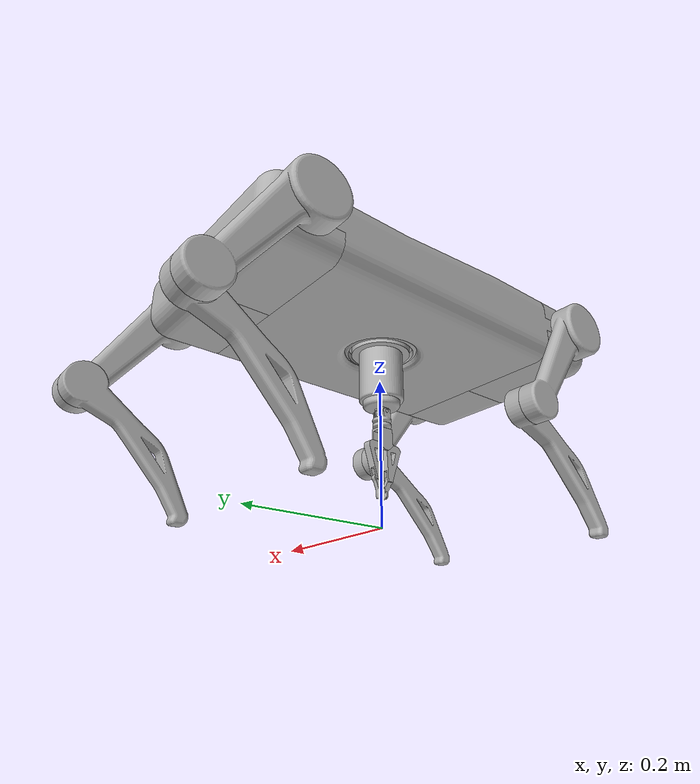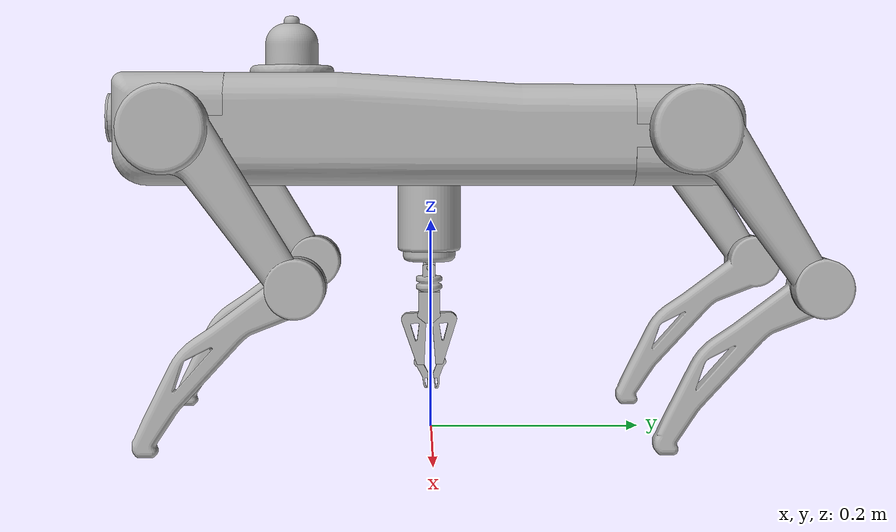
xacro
<?xml version="1.0" ?>
<robot name="Monitring" xmlns:xacro="http://www.ros.org/wiki/xacro">

<xacro:include filename="$(find Monitring_description)/urdf/materials.xacro" />
<xacro:include filename="$(find Monitring_description)/urdf/Monitring.trans" />
<xacro:include filename="$(find Monitring_description)/urdf/Monitring.gazebo" />
<link name="base_link">
  <inertial>
    <origin xyz="-0.00020325102332582743 -0.006614361054954055 0.286115067434537" rpy="0 0 0"/>
    <mass value="80.71088314860289"/>
    <inertia ixx="0.99771" iyy="0.6475" izz="1.528021" ixy="0.000886" iyz="0.021555" ixz="-2.2e-05"/>
  </inertial>
  <visual>
    <origin xyz="0 0 0" rpy="0 0 0"/>
    <geometry>
      <mesh filename="package://Monitring_description/meshes/base_link.stl" scale="0.001 0.001 0.001"/>
    </geometry>
    <material name="silver"/>
  </visual>
  <collision>
    <origin xyz="0 0 0" rpy="0 0 0"/>
    <geometry>
      <mesh filename="package://Monitring_description/meshes/base_link.stl" scale="0.001 0.001 0.001"/>
    </geometry>
  </collision>
</link>

<link name="front_left_leg_motor_1">
  <inertial>
    <origin xyz="-0.01355306353058533 2.6958860482872993e-07 2.5568792041963384e-07" rpy="0 0 0"/>
    <mass value="0.10249936906188849"/>
    <inertia ixx="8e-06" iyy="1.1e-05" izz="1.1e-05" ixy="-0.0" iyz="-0.0" ixz="-0.0"/>
  </inertial>
  <visual>
    <origin xyz="-0.172917 0.119216 -0.14933" rpy="0 0 0"/>
    <geometry>
      <mesh filename="package://Monitring_description/meshes/front_left_leg_motor_1.stl" scale="0.001 0.001 0.001"/>
    </geometry>
    <material name="silver"/>
  </visual>
  <collision>
    <origin xyz="-0.172917 0.119216 -0.14933" rpy="0 0 0"/>
    <geometry>
      <mesh filename="package://Monitring_description/meshes/front_left_leg_motor_1.stl" scale="0.001 0.001 0.001"/>
    </geometry>
  </collision>
</link>

<link name="front_left_base_leg_motor_1">
  <inertial>
    <origin xyz="0.010454059020349127 -9.613628770832605e-08 1.8815450003595302e-07" rpy="0 0 0"/>
    <mass value="0.20345739422810855"/>
    <inertia ixx="4e-05" iyy="2.8e-05" izz="2.8e-05" ixy="0.0" iyz="0.0" ixz="0.0"/>
  </inertial>
  <visual>
    <origin xyz="-0.139917 0.23194 -0.288009" rpy="0 0 0"/>
    <geometry>
      <mesh filename="package://Monitring_description/meshes/front_left_base_leg_motor_1.stl" scale="0.001 0.001 0.001"/>
    </geometry>
    <material name="silver"/>
  </visual>
  <collision>
    <origin xyz="-0.139917 0.23194 -0.288009" rpy="0 0 0"/>
    <geometry>
      <mesh filename="package://Monitring_description/meshes/front_left_base_leg_motor_1.stl" scale="0.001 0.001 0.001"/>
    </geometry>
  </collision>
</link>

<link name="back_left_base_leg_motor_1">
  <inertial>
    <origin xyz="0.010454242286346449 3.5977566265055216e-07 2.1268242222927114e-08" rpy="0 0 0"/>
    <mass value="0.2034573942281088"/>
    <inertia ixx="4e-05" iyy="2.8e-05" izz="2.8e-05" ixy="0.0" iyz="0.0" ixz="0.0"/>
  </inertial>
  <visual>
    <origin xyz="-0.139667 -0.229401 -0.287472" rpy="0 0 0"/>
    <geometry>
      <mesh filename="package://Monitring_description/meshes/back_left_base_leg_motor_1.stl" scale="0.001 0.001 0.001"/>
    </geometry>
    <material name="silver"/>
  </visual>
  <collision>
    <origin xyz="-0.139667 -0.229401 -0.287472" rpy="0 0 0"/>
    <geometry>
      <mesh filename="package://Monitring_description/meshes/back_left_base_leg_motor_1.stl" scale="0.001 0.001 0.001"/>
    </geometry>
  </collision>
</link>

<link name="back_left_leg_motor_1">
  <inertial>
    <origin xyz="-0.011111359672118515 -2.1675701084022947e-07 2.2569353907986311e-07" rpy="0 0 0"/>
    <mass value="0.08323257036604467"/>
    <inertia ixx="6e-06" iyy="7e-06" izz="7e-06" ixy="-0.0" iyz="-0.0" ixz="-0.0"/>
  </inertial>
  <visual>
    <origin xyz="-0.167667 -0.341735 -0.148476" rpy="0 0 0"/>
    <geometry>
      <mesh filename="package://Monitring_description/meshes/back_left_leg_motor_1.stl" scale="0.001 0.001 0.001"/>
    </geometry>
    <material name="silver"/>
  </visual>
  <collision>
    <origin xyz="-0.167667 -0.341735 -0.148476" rpy="0 0 0"/>
    <geometry>
      <mesh filename="package://Monitring_description/meshes/back_left_leg_motor_1.stl" scale="0.001 0.001 0.001"/>
    </geometry>
  </collision>
</link>

<link name="back_right_base_leg_motor_1">
  <inertial>
    <origin xyz="-0.010454848607162615 -1.1127678836708732e-07 -2.9755577557466495e-07" rpy="0 0 0"/>
    <mass value="0.20345739422810927"/>
    <inertia ixx="4e-05" iyy="2.8e-05" izz="2.8e-05" ixy="0.0" iyz="0.0" ixz="0.0"/>
  </inertial>
  <visual>
    <origin xyz="0.140333 -0.229069 -0.287433" rpy="0 0 0"/>
    <geometry>
      <mesh filename="package://Monitring_description/meshes/back_right_base_leg_motor_1.stl" scale="0.001 0.001 0.001"/>
    </geometry>
    <material name="silver"/>
  </visual>
  <collision>
    <origin xyz="0.140333 -0.229069 -0.287433" rpy="0 0 0"/>
    <geometry>
      <mesh filename="package://Monitring_description/meshes/back_right_base_leg_motor_1.stl" scale="0.001 0.001 0.001"/>
    </geometry>
  </collision>
</link>

<link name="back_right_leg_motor_1">
  <inertial>
    <origin xyz="0.011110862618776779 -4.2584045267801685e-07 3.1288211896352003e-07" rpy="0 0 0"/>
    <mass value="0.08323257036604494"/>
    <inertia ixx="6e-06" iyy="7e-06" izz="7e-06" ixy="-0.0" iyz="0.0" ixz="-0.0"/>
  </inertial>
  <visual>
    <origin xyz="0.168333 -0.341236 -0.148302" rpy="0 0 0"/>
    <geometry>
      <mesh filename="package://Monitring_description/meshes/back_right_leg_motor_1.stl" scale="0.001 0.001 0.001"/>
    </geometry>
    <material name="silver"/>
  </visual>
  <collision>
    <origin xyz="0.168333 -0.341236 -0.148302" rpy="0 0 0"/>
    <geometry>
      <mesh filename="package://Monitring_description/meshes/back_right_leg_motor_1.stl" scale="0.001 0.001 0.001"/>
    </geometry>
  </collision>
</link>

<link name="front_right_base_leg_motor_1">
  <inertial>
    <origin xyz="-0.010455031888808447 -9.585623078622874e-08 -3.306228518740184e-07" rpy="0 0 0"/>
    <mass value="0.20345739422810932"/>
    <inertia ixx="4e-05" iyy="2.8e-05" izz="2.8e-05" ixy="0.0" iyz="-0.0" ixz="0.0"/>
  </inertial>
  <visual>
    <origin xyz="0.140083 0.23244 -0.28801" rpy="0 0 0"/>
    <geometry>
      <mesh filename="package://Monitring_description/meshes/front_right_base_leg_motor_1.stl" scale="0.001 0.001 0.001"/>
    </geometry>
    <material name="silver"/>
  </visual>
  <collision>
    <origin xyz="0.140083 0.23244 -0.28801" rpy="0 0 0"/>
    <geometry>
      <mesh filename="package://Monitring_description/meshes/front_right_base_leg_motor_1.stl" scale="0.001 0.001 0.001"/>
    </geometry>
  </collision>
</link>

<link name="front_right_leg_motor_1">
  <inertial>
    <origin xyz="0.013552199751893257 3.276070541513576e-07 -1.322617027010864e-07" rpy="0 0 0"/>
    <mass value="0.10249936906188857"/>
    <inertia ixx="8e-06" iyy="1.1e-05" izz="1.1e-05" ixy="-0.0" iyz="-0.0" ixz="-0.0"/>
  </inertial>
  <visual>
    <origin xyz="0.173083 0.120107 -0.149014" rpy="0 0 0"/>
    <geometry>
      <mesh filename="package://Monitring_description/meshes/front_right_leg_motor_1.stl" scale="0.001 0.001 0.001"/>
    </geometry>
    <material name="silver"/>
  </visual>
  <collision>
    <origin xyz="0.173083 0.120107 -0.149014" rpy="0 0 0"/>
    <geometry>
      <mesh filename="package://Monitring_description/meshes/front_right_leg_motor_1.stl" scale="0.001 0.001 0.001"/>
    </geometry>
  </collision>
</link>

<link name="front_left_base_leg_1">
  <inertial>
    <origin xyz="-0.0042028087443805595 0.03753931839608016 -0.04369504771125657" rpy="0 0 0"/>
    <mass value="2.092722249521675"/>
    <inertia ixx="0.010959" iyy="0.00659" izz="0.004637" ixy="0.000168" iyz="0.00476" ixz="-0.000192"/>
  </inertial>
  <visual>
    <origin xyz="-0.169917 0.23194 -0.288009" rpy="0 0 0"/>
    <geometry>
      <mesh filename="package://Monitring_description/meshes/front_left_base_leg_1.stl" scale="0.001 0.001 0.001"/>
    </geometry>
    <material name="silver"/>
  </visual>
  <collision>
    <origin xyz="-0.169917 0.23194 -0.288009" rpy="0 0 0"/>
    <geometry>
      <mesh filename="package://Monitring_description/meshes/front_left_base_leg_1.stl" scale="0.001 0.001 0.001"/>
    </geometry>
  </collision>
</link>

<link name="front_left_leg_1">
  <inertial>
    <origin xyz="0.004220836142769302 -0.055275914090389164 -0.04659499214753224" rpy="0 0 0"/>
    <mass value="1.065581536123824"/>
    <inertia ixx="0.004832" iyy="0.002304" izz="0.002603" ixy="4.1e-05" iyz="-0.002257" ixz="3.5e-05"/>
  </inertial>
  <visual>
    <origin xyz="-0.137917 0.119216 -0.14933" rpy="0 0 0"/>
    <geometry>
      <mesh filename="package://Monitring_description/meshes/front_left_leg_1.stl" scale="0.001 0.001 0.001"/>
    </geometry>
    <material name="silver"/>
  </visual>
  <collision>
    <origin xyz="-0.137917 0.119216 -0.14933" rpy="0 0 0"/>
    <geometry>
      <mesh filename="package://Monitring_description/meshes/front_left_leg_1.stl" scale="0.001 0.001 0.001"/>
    </geometry>
  </collision>
</link>

<link name="back_left_base_leg_1">
  <inertial>
    <origin xyz="-0.004163104648545246 0.03810093624728547 -0.0446590675804798" rpy="0 0 0"/>
    <mass value="2.1124453566269383"/>
    <inertia ixx="0.011241" iyy="0.006793" izz="0.004718" ixy="0.000161" iyz="0.004891" ixz="-0.000184"/>
  </inertial>
  <visual>
    <origin xyz="-0.169667 -0.229401 -0.287472" rpy="0 0 0"/>
    <geometry>
      <mesh filename="package://Monitring_description/meshes/back_left_base_leg_1.stl" scale="0.001 0.001 0.001"/>
    </geometry>
    <material name="silver"/>
  </visual>
  <collision>
    <origin xyz="-0.169667 -0.229401 -0.287472" rpy="0 0 0"/>
    <geometry>
      <mesh filename="package://Monitring_description/meshes/back_left_base_leg_1.stl" scale="0.001 0.001 0.001"/>
    </geometry>
  </collision>
</link>

<link name="back_left_leg_1">
  <inertial>
    <origin xyz="0.0023131088272729805 -0.055372230830643854 -0.0464666435271061" rpy="0 0 0"/>
    <mass value="1.065785454975773"/>
    <inertia ixx="0.004832" iyy="0.002293" izz="0.002612" ixy="-1.3e-05" iyz="-0.002257" ixz="-1.2e-05"/>
  </inertial>
  <visual>
    <origin xyz="-0.137667 -0.341735 -0.148476" rpy="0 0 0"/>
    <geometry>
      <mesh filename="package://Monitring_description/meshes/back_left_leg_1.stl" scale="0.001 0.001 0.001"/>
    </geometry>
    <material name="silver"/>
  </visual>
  <collision>
    <origin xyz="-0.137667 -0.341735 -0.148476" rpy="0 0 0"/>
    <geometry>
      <mesh filename="package://Monitring_description/meshes/back_left_leg_1.stl" scale="0.001 0.001 0.001"/>
    </geometry>
  </collision>
</link>

<link name="back_right_base_leg_1">
  <inertial>
    <origin xyz="0.004897967571580536 0.03979115383289453 -0.046741590293101654" rpy="0 0 0"/>
    <mass value="2.0163974221185823"/>
    <inertia ixx="0.010807" iyy="0.006534" izz="0.004494" ixy="-0.000103" iyz="0.00471" ixz="0.000116"/>
  </inertial>
  <visual>
    <origin xyz="0.170333 -0.229069 -0.287433" rpy="0 0 0"/>
    <geometry>
      <mesh filename="package://Monitring_description/meshes/back_right_base_leg_1.stl" scale="0.001 0.001 0.001"/>
    </geometry>
    <material name="silver"/>
  </visual>
  <collision>
    <origin xyz="0.170333 -0.229069 -0.287433" rpy="0 0 0"/>
    <geometry>
      <mesh filename="package://Monitring_description/meshes/back_right_base_leg_1.stl" scale="0.001 0.001 0.001"/>
    </geometry>
  </collision>
</link>

<link name="back_right_leg_1">
  <inertial>
    <origin xyz="-0.002313568074036848 -0.05542816518882643 -0.046400173035600456" rpy="0 0 0"/>
    <mass value="1.06578555375219"/>
    <inertia ixx="0.004832" iyy="0.002288" izz="0.002618" ixy="1.3e-05" iyz="-0.002257" ixz="1.2e-05"/>
  </inertial>
  <visual>
    <origin xyz="0.138333 -0.341236 -0.148302" rpy="0 0 0"/>
    <geometry>
      <mesh filename="package://Monitring_description/meshes/back_right_leg_1.stl" scale="0.001 0.001 0.001"/>
    </geometry>
    <material name="silver"/>
  </visual>
  <collision>
    <origin xyz="0.138333 -0.341236 -0.148302" rpy="0 0 0"/>
    <geometry>
      <mesh filename="package://Monitring_description/meshes/back_right_leg_1.stl" scale="0.001 0.001 0.001"/>
    </geometry>
  </collision>
</link>

<link name="front_right_base_leg_1">
  <inertial>
    <origin xyz="0.004952969623389425 0.0391325805786599 -0.04579486394516111" rpy="0 0 0"/>
    <mass value="1.9975475266701999"/>
    <inertia ixx="0.010541" iyy="0.006356" izz="0.004404" ixy="-0.00011" iyz="0.004584" ixz="0.000126"/>
  </inertial>
  <visual>
    <origin xyz="0.170083 0.23244 -0.28801" rpy="0 0 0"/>
    <geometry>
      <mesh filename="package://Monitring_description/meshes/front_right_base_leg_1.stl" scale="0.001 0.001 0.001"/>
    </geometry>
    <material name="silver"/>
  </visual>
  <collision>
    <origin xyz="0.170083 0.23244 -0.28801" rpy="0 0 0"/>
    <geometry>
      <mesh filename="package://Monitring_description/meshes/front_right_base_leg_1.stl" scale="0.001 0.001 0.001"/>
    </geometry>
  </collision>
</link>

<link name="front_right_leg_1">
  <inertial>
    <origin xyz="-0.0023137513825912392 -0.055371737267717755 -0.046467042206003964" rpy="0 0 0"/>
    <mass value="1.0657855537518786"/>
    <inertia ixx="0.004832" iyy="0.002293" izz="0.002612" ixy="1.3e-05" iyz="-0.002257" ixz="1.2e-05"/>
  </inertial>
  <visual>
    <origin xyz="0.138083 0.120107 -0.149014" rpy="0 0 0"/>
    <geometry>
      <mesh filename="package://Monitring_description/meshes/front_right_leg_1.stl" scale="0.001 0.001 0.001"/>
    </geometry>
    <material name="silver"/>
  </visual>
  <collision>
    <origin xyz="0.138083 0.120107 -0.149014" rpy="0 0 0"/>
    <geometry>
      <mesh filename="package://Monitring_description/meshes/front_right_leg_1.stl" scale="0.001 0.001 0.001"/>
    </geometry>
  </collision>
</link>

<link name="front_left_base_1">
  <inertial>
    <origin xyz="-0.09992764108558433 -0.030370973245198912 -0.0009104367972322946" rpy="0 0 0"/>
    <mass value="13.258348671835023"/>
    <inertia ixx="0.018658" iyy="0.060819" izz="0.060451" ixy="-0.000208" iyz="0.000423" ixz="-0.000144"/>
  </inertial>
  <visual>
    <origin xyz="-0.149917 0.202438 -0.289554" rpy="0 0 0"/>
    <geometry>
      <mesh filename="package://Monitring_description/meshes/front_left_base_1.stl" scale="0.001 0.001 0.001"/>
    </geometry>
    <material name="silver"/>
  </visual>
  <collision>
    <origin xyz="-0.149917 0.202438 -0.289554" rpy="0 0 0"/>
    <geometry>
      <mesh filename="package://Monitring_description/meshes/front_left_base_1.stl" scale="0.001 0.001 0.001"/>
    </geometry>
  </collision>
</link>

<link name="front_right_base_1">
  <inertial>
    <origin xyz="0.0706885656481083 -0.031166932082921928 -0.0005375477104654358" rpy="0 0 0"/>
    <mass value="8.37636589964444"/>
    <inertia ixx="0.016226" iyy="0.02392" izz="0.023592" ixy="0.000424" iyz="0.000418" ixz="-0.000102"/>
  </inertial>
  <visual>
    <origin xyz="0.150083 0.202438 -0.289554" rpy="0 0 0"/>
    <geometry>
      <mesh filename="package://Monitring_description/meshes/front_right_base_1.stl" scale="0.001 0.001 0.001"/>
    </geometry>
    <material name="silver"/>
  </visual>
  <collision>
    <origin xyz="0.150083 0.202438 -0.289554" rpy="0 0 0"/>
    <geometry>
      <mesh filename="package://Monitring_description/meshes/front_right_base_1.stl" scale="0.001 0.001 0.001"/>
    </geometry>
  </collision>
</link>

<link name="back_left_base_1">
  <inertial>
    <origin xyz="-0.10265316351089646 0.02981183227621112 0.0014426139207562305" rpy="0 0 0"/>
    <mass value="11.82293363668432"/>
    <inertia ixx="0.014342" iyy="0.054891" izz="0.05562" ixy="0.000269" iyz="5e-06" ixz="0.001205"/>
  </inertial>
  <visual>
    <origin xyz="-0.149667 -0.199368 -0.28207" rpy="0 0 0"/>
    <geometry>
      <mesh filename="package://Monitring_description/meshes/back_left_base_1.stl" scale="0.001 0.001 0.001"/>
    </geometry>
    <material name="silver"/>
  </visual>
  <collision>
    <origin xyz="-0.149667 -0.199368 -0.28207" rpy="0 0 0"/>
    <geometry>
      <mesh filename="package://Monitring_description/meshes/back_left_base_1.stl" scale="0.001 0.001 0.001"/>
    </geometry>
  </collision>
</link>

<link name="back_right_base_1">
  <inertial>
    <origin xyz="0.06907756203317217 0.02922427436402994 -0.0014045542357313812" rpy="0 0 0"/>
    <mass value="6.910421304438817"/>
    <inertia ixx="0.011763" iyy="0.01837" izz="0.019249" ixy="-0.000113" iyz="1.9e-05" ixz="0.000368"/>
  </inertial>
  <visual>
    <origin xyz="0.150333 -0.199368 -0.28207" rpy="0 0 0"/>
    <geometry>
      <mesh filename="package://Monitring_description/meshes/back_right_base_1.stl" scale="0.001 0.001 0.001"/>
    </geometry>
    <material name="silver"/>
  </visual>
  <collision>
    <origin xyz="0.150333 -0.199368 -0.28207" rpy="0 0 0"/>
    <geometry>
      <mesh filename="package://Monitring_description/meshes/back_right_base_1.stl" scale="0.001 0.001 0.001"/>
    </geometry>
  </collision>
</link>

<link name="lidar_1">
  <inertial>
    <origin xyz="4.829402863645849e-07 2.137869975457618e-05 0.017963606616898997" rpy="0 0 0"/>
    <mass value="0.5398697778952618"/>
    <inertia ixx="0.00014" iyy="0.00014" izz="0.000154" ixy="-0.0" iyz="0.0" ixz="-0.0"/>
  </inertial>
  <visual>
    <origin xyz="8.4e-05 0.132368 -0.34789" rpy="0 0 0"/>
    <geometry>
      <mesh filename="package://Monitring_description/meshes/lidar_1.stl" scale="0.001 0.001 0.001"/>
    </geometry>
    <material name="silver"/>
  </visual>
  <collision>
    <origin xyz="8.4e-05 0.132368 -0.34789" rpy="0 0 0"/>
    <geometry>
      <mesh filename="package://Monitring_description/meshes/lidar_1.stl" scale="0.001 0.001 0.001"/>
    </geometry>
  </collision>
</link>

<link name="front_right_sensor_1">
  <inertial>
    <origin xyz="-3.8654046767561123e-07 -0.0049998732751902475 5.552201057523742e-06" rpy="0 0 0"/>
    <mass value="0.05086434855702733"/>
    <inertia ixx="6e-06" iyy="1e-05" izz="6e-06" ixy="0.0" iyz="-0.0" ixz="-0.0"/>
  </inertial>
  <visual>
    <origin xyz="0.041398 0.282428 -0.298231" rpy="0 0 0"/>
    <geometry>
      <mesh filename="package://Monitring_description/meshes/front_right_sensor_1.stl" scale="0.001 0.001 0.001"/>
    </geometry>
    <material name="silver"/>
  </visual>
  <collision>
    <origin xyz="0.041398 0.282428 -0.298231" rpy="0 0 0"/>
    <geometry>
      <mesh filename="package://Monitring_description/meshes/front_right_sensor_1.stl" scale="0.001 0.001 0.001"/>
    </geometry>
  </collision>
</link>

<link name="front_left_sensor_1">
  <inertial>
    <origin xyz="1.5667747201020266e-07 -0.005000066535598646 6.083392802835874e-06" rpy="0 0 0"/>
    <mass value="0.050864348557027095"/>
    <inertia ixx="6e-06" iyy="1e-05" izz="6e-06" ixy="0.0" iyz="-0.0" ixz="-0.0"/>
  </inertial>
  <visual>
    <origin xyz="-0.04073 0.281928 -0.298069" rpy="0 0 0"/>
    <geometry>
      <mesh filename="package://Monitring_description/meshes/front_left_sensor_1.stl" scale="0.001 0.001 0.001"/>
    </geometry>
    <material name="silver"/>
  </visual>
  <collision>
    <origin xyz="-0.04073 0.281928 -0.298069" rpy="0 0 0"/>
    <geometry>
      <mesh filename="package://Monitring_description/meshes/front_left_sensor_1.stl" scale="0.001 0.001 0.001"/>
    </geometry>
  </collision>
</link>

<link name="right_sensor_cover_1">
  <inertial>
    <origin xyz="-3.865427420299272e-07 -0.0009998653682249947 7.413177312010077e-07" rpy="0 0 0"/>
    <mass value="0.024969771109812754"/>
    <inertia ixx="3e-06" iyy="6e-06" izz="3e-06" ixy="0.0" iyz="-0.0" ixz="-0.0"/>
  </inertial>
  <visual>
    <origin xyz="0.041398 0.297428 -0.298249" rpy="0 0 0"/>
    <geometry>
      <mesh filename="package://Monitring_description/meshes/right_sensor_cover_1.stl" scale="0.001 0.001 0.001"/>
    </geometry>
    <material name="silver"/>
  </visual>
  <collision>
    <origin xyz="0.041398 0.297428 -0.298249" rpy="0 0 0"/>
    <geometry>
      <mesh filename="package://Monitring_description/meshes/right_sensor_cover_1.stl" scale="0.001 0.001 0.001"/>
    </geometry>
  </collision>
</link>

<link name="left_sensor_cover_1">
  <inertial>
    <origin xyz="1.566750857176502e-07 -0.0010000582692422655 8.72014260355769e-07" rpy="0 0 0"/>
    <mass value="0.024969771109812727"/>
    <inertia ixx="3e-06" iyy="6e-06" izz="3e-06" ixy="0.0" iyz="-0.0" ixz="-0.0"/>
  </inertial>
  <visual>
    <origin xyz="-0.04073 0.297428 -0.298088" rpy="0 0 0"/>
    <geometry>
      <mesh filename="package://Monitring_description/meshes/left_sensor_cover_1.stl" scale="0.001 0.001 0.001"/>
    </geometry>
    <material name="silver"/>
  </visual>
  <collision>
    <origin xyz="-0.04073 0.297428 -0.298088" rpy="0 0 0"/>
    <geometry>
      <mesh filename="package://Monitring_description/meshes/left_sensor_cover_1.stl" scale="0.001 0.001 0.001"/>
    </geometry>
  </collision>
</link>

<link name="hydraulic_cylinder_shoilder_1">
  <inertial>
    <origin xyz="-3.6683610080061693e-07 -2.9177161562294598e-05 -0.026364798754519164" rpy="0 0 0"/>
    <mass value="0.9454407029039884"/>
    <inertia ixx="0.000959" iyy="0.000959" izz="0.000738" ixy="0.0" iyz="-0.0" ixz="0.0"/>
  </inertial>
  <visual>
    <origin xyz="0.000208 0.001576 -0.252741" rpy="0 0 0"/>
    <geometry>
      <mesh filename="package://Monitring_description/meshes/hydraulic_cylinder_shoilder_1.stl" scale="0.001 0.001 0.001"/>
    </geometry>
    <material name="silver"/>
  </visual>
  <collision>
    <origin xyz="0.000208 0.001576 -0.252741" rpy="0 0 0"/>
    <geometry>
      <mesh filename="package://Monitring_description/meshes/hydraulic_cylinder_shoilder_1.stl" scale="0.001 0.001 0.001"/>
    </geometry>
  </collision>
</link>

<link name="hydraulic_base_1">
  <inertial>
    <origin xyz="-3.75423157790894e-07 -5.159806883186157e-06 -0.004519380552026081" rpy="0 0 0"/>
    <mass value="0.10420666516314857"/>
    <inertia ixx="0.000118" iyy="0.000118" izz="0.000234" ixy="-0.0" iyz="0.0" ixz="-0.0"/>
  </inertial>
  <visual>
    <origin xyz="0.000208 0.001576 -0.252741" rpy="0 0 0"/>
    <geometry>
      <mesh filename="package://Monitring_description/meshes/hydraulic_base_1.stl" scale="0.001 0.001 0.001"/>
    </geometry>
    <material name="silver"/>
  </visual>
  <collision>
    <origin xyz="0.000208 0.001576 -0.252741" rpy="0 0 0"/>
    <geometry>
      <mesh filename="package://Monitring_description/meshes/hydraulic_base_1.stl" scale="0.001 0.001 0.001"/>
    </geometry>
  </collision>
</link>

<link name="hydraulic_cylinder_elbow_1">
  <inertial>
    <origin xyz="-3.568217547931401e-07 -4.418653736857248e-05 -0.039841231788629416" rpy="0 0 0"/>
    <mass value="1.2279882253595107"/>
    <inertia ixx="0.000841" iyy="0.000841" izz="0.000382" ixy="0.0" iyz="-1e-06" ixz="0.0"/>
  </inertial>
  <visual>
    <origin xyz="0.000208 0.001589 -0.240741" rpy="0 0 0"/>
    <geometry>
      <mesh filename="package://Monitring_description/meshes/hydraulic_cylinder_elbow_1.stl" scale="0.001 0.001 0.001"/>
    </geometry>
    <material name="silver"/>
  </visual>
  <collision>
    <origin xyz="0.000208 0.001589 -0.240741" rpy="0 0 0"/>
    <geometry>
      <mesh filename="package://Monitring_description/meshes/hydraulic_cylinder_elbow_1.stl" scale="0.001 0.001 0.001"/>
    </geometry>
  </collision>
</link>

<link name="jaw_rotator_clip_1">
  <inertial>
    <origin xyz="-7.545848842800977e-06 9.649372761507454e-06 -0.004410483066082049" rpy="0 0 0"/>
    <mass value="0.004350966291698379"/>
    <inertia ixx="0.0" iyy="0.0" izz="0.0" ixy="-0.0" iyz="-0.0" ixz="0.0"/>
  </inertial>
  <visual>
    <origin xyz="0.000208 0.001677 -0.160741" rpy="0 0 0"/>
    <geometry>
      <mesh filename="package://Monitring_description/meshes/jaw_rotator_clip_1.stl" scale="0.001 0.001 0.001"/>
    </geometry>
    <material name="silver"/>
  </visual>
  <collision>
    <origin xyz="0.000208 0.001677 -0.160741" rpy="0 0 0"/>
    <geometry>
      <mesh filename="package://Monitring_description/meshes/jaw_rotator_clip_1.stl" scale="0.001 0.001 0.001"/>
    </geometry>
  </collision>
</link>

<link name="jaw_rotator_nut_1">
  <inertial>
    <origin xyz="0.0076238856762389385 3.0208323198532925e-06 -3.8760053944209005e-08" rpy="0 0 0"/>
    <mass value="0.003340071270723441"/>
    <inertia ixx="0.0" iyy="0.0" izz="0.0" ixy="-0.0" iyz="-0.0" ixz="0.0"/>
  </inertial>
  <visual>
    <origin xyz="0.007952 0.001687 -0.154741" rpy="0 0 0"/>
    <geometry>
      <mesh filename="package://Monitring_description/meshes/jaw_rotator_nut_1.stl" scale="0.001 0.001 0.001"/>
    </geometry>
    <material name="silver"/>
  </visual>
  <collision>
    <origin xyz="0.007952 0.001687 -0.154741" rpy="0 0 0"/>
    <geometry>
      <mesh filename="package://Monitring_description/meshes/jaw_rotator_nut_1.stl" scale="0.001 0.001 0.001"/>
    </geometry>
  </collision>
</link>

<link name="jaw_rotator_1">
  <inertial>
    <origin xyz="0.010897963499537288 -0.00015447245080469274 -0.014696161355825632" rpy="0 0 0"/>
    <mass value="0.05615400550640784"/>
    <inertia ixx="3e-06" iyy="4e-06" izz="4e-06" ixy="-0.0" iyz="0.0" ixz="-0.0"/>
  </inertial>
  <visual>
    <origin xyz="0.01119 0.001688 -0.154741" rpy="0 0 0"/>
    <geometry>
      <mesh filename="package://Monitring_description/meshes/jaw_rotator_1.stl" scale="0.001 0.001 0.001"/>
    </geometry>
    <material name="silver"/>
  </visual>
  <collision>
    <origin xyz="0.01119 0.001688 -0.154741" rpy="0 0 0"/>
    <geometry>
      <mesh filename="package://Monitring_description/meshes/jaw_rotator_1.stl" scale="0.001 0.001 0.001"/>
    </geometry>
  </collision>
</link>

<link name="jaw_shoulder_1">
  <inertial>
    <origin xyz="-1.2451457159735435e-05 -5.9180682004574166e-05 -0.012228638431265926" rpy="0 0 0"/>
    <mass value="0.03059834864380673"/>
    <inertia ixx="3e-06" iyy="4e-06" izz="3e-06" ixy="-0.0" iyz="-0.0" ixz="0.0"/>
  </inertial>
  <visual>
    <origin xyz="0.000292 0.001852 -0.130237" rpy="0 0 0"/>
    <geometry>
      <mesh filename="package://Monitring_description/meshes/jaw_shoulder_1.stl" scale="0.001 0.001 0.001"/>
    </geometry>
    <material name="silver"/>
  </visual>
  <collision>
    <origin xyz="0.000292 0.001852 -0.130237" rpy="0 0 0"/>
    <geometry>
      <mesh filename="package://Monitring_description/meshes/jaw_shoulder_1.stl" scale="0.001 0.001 0.001"/>
    </geometry>
  </collision>
</link>

<link name="sprayer_1">
  <inertial>
    <origin xyz="7.171750777889187e-08 -5.890181413258479e-06 -0.0055260026652866195" rpy="0 0 0"/>
    <mass value="0.006523483507981387"/>
    <inertia ixx="0.0" iyy="0.0" izz="0.0" ixy="0.0" iyz="-0.0" ixz="0.0"/>
  </inertial>
  <visual>
    <origin xyz="-3e-06 0.001857 -0.130237" rpy="0 0 0"/>
    <geometry>
      <mesh filename="package://Monitring_description/meshes/sprayer_1.stl" scale="0.001 0.001 0.001"/>
    </geometry>
    <material name="silver"/>
  </visual>
  <collision>
    <origin xyz="-3e-06 0.001857 -0.130237" rpy="0 0 0"/>
    <geometry>
      <mesh filename="package://Monitring_description/meshes/sprayer_1.stl" scale="0.001 0.001 0.001"/>
    </geometry>
  </collision>
</link>

<link name="jaw_back_palm_1">
  <inertial>
    <origin xyz="-1.0362083782172748e-05 0.005856671047257573 -0.015702655242094396" rpy="0 0 0"/>
    <mass value="0.05569897642983135"/>
    <inertia ixx="1.1e-05" iyy="1e-05" izz="3e-06" ixy="-0.0" iyz="-1e-06" ixz="-0.0"/>
  </inertial>
  <visual>
    <origin xyz="0.000295 -0.005579 -0.108098" rpy="0 0 0"/>
    <geometry>
      <mesh filename="package://Monitring_description/meshes/jaw_back_palm_1.stl" scale="0.001 0.001 0.001"/>
    </geometry>
    <material name="silver"/>
  </visual>
  <collision>
    <origin xyz="0.000295 -0.005579 -0.108098" rpy="0 0 0"/>
    <geometry>
      <mesh filename="package://Monitring_description/meshes/jaw_back_palm_1.stl" scale="0.001 0.001 0.001"/>
    </geometry>
  </collision>
</link>

<link name="jaw_front_palm_1">
  <inertial>
    <origin xyz="1.0162209032976125e-05 -0.005358451439446861 -0.015880153967867183" rpy="0 0 0"/>
    <mass value="0.055699424431560826"/>
    <inertia ixx="1.1e-05" iyy="1e-05" izz="3e-06" ixy="-0.0" iyz="1e-06" ixz="0.0"/>
  </inertial>
  <visual>
    <origin xyz="0.00029 0.00942 -0.107862" rpy="0 0 0"/>
    <geometry>
      <mesh filename="package://Monitring_description/meshes/jaw_front_palm_1.stl" scale="0.001 0.001 0.001"/>
    </geometry>
    <material name="silver"/>
  </visual>
  <collision>
    <origin xyz="0.00029 0.00942 -0.107862" rpy="0 0 0"/>
    <geometry>
      <mesh filename="package://Monitring_description/meshes/jaw_front_palm_1.stl" scale="0.001 0.001 0.001"/>
    </geometry>
  </collision>
</link>

<link name="jaw_back_finger_1">
  <inertial>
    <origin xyz="1.9736965442535394e-07 -0.0008438348472427975 -0.010836610104960308" rpy="0 0 0"/>
    <mass value="0.008207299762984344"/>
    <inertia ixx="1e-06" iyy="1e-06" izz="0.0" ixy="0.0" iyz="-0.0" ixz="0.0"/>
  </inertial>
  <visual>
    <origin xyz="0.000231 -0.008241 -0.066135" rpy="0 0 0"/>
    <geometry>
      <mesh filename="package://Monitring_description/meshes/jaw_back_finger_1.stl" scale="0.001 0.001 0.001"/>
    </geometry>
    <material name="silver"/>
  </visual>
  <collision>
    <origin xyz="0.000231 -0.008241 -0.066135" rpy="0 0 0"/>
    <geometry>
      <mesh filename="package://Monitring_description/meshes/jaw_back_finger_1.stl" scale="0.001 0.001 0.001"/>
    </geometry>
  </collision>
</link>

<link name="jaw_front_finger_1">
  <inertial>
    <origin xyz="-1.1820294820392768e-06 0.0021227132385251302 -0.010659950221155456" rpy="0 0 0"/>
    <mass value="0.008207299617451301"/>
    <inertia ixx="1e-06" iyy="0.0" izz="0.0" ixy="0.0" iyz="0.0" ixz="-0.0"/>
  </inertial>
  <visual>
    <origin xyz="0.000354 0.010757 -0.065835" rpy="0 0 0"/>
    <geometry>
      <mesh filename="package://Monitring_description/meshes/jaw_front_finger_1.stl" scale="0.001 0.001 0.001"/>
    </geometry>
    <material name="silver"/>
  </visual>
  <collision>
    <origin xyz="0.000354 0.010757 -0.065835" rpy="0 0 0"/>
    <geometry>
      <mesh filename="package://Monitring_description/meshes/jaw_front_finger_1.stl" scale="0.001 0.001 0.001"/>
    </geometry>
  </collision>
</link>

<joint name="front_left_leg_motor_joint" type="fixed">
  <origin xyz="0.003 0.112724 -0.138679" rpy="0 0 0"/>
  <parent link="front_left_base_leg_1"/>
  <child link="front_left_leg_motor_1"/>
</joint>

<joint name="front_left_base_leg_motor_joint" type="fixed">
  <origin xyz="-0.01 -0.029502 -0.001545" rpy="0 0 0"/>
  <parent link="front_left_base_1"/>
  <child link="front_left_base_leg_motor_1"/>
</joint>

<joint name="rear_left_base_leg_motor_joint" type="fixed">
  <origin xyz="-0.01 0.030033 0.005402" rpy="0 0 0"/>
  <parent link="back_left_base_1"/>
  <child link="back_left_base_leg_motor_1"/>
</joint>

<joint name="rear_left_leg_motor_joint" type="fixed">
  <origin xyz="-0.002 0.112334 -0.138996" rpy="0 0 0"/>
  <parent link="back_left_base_leg_1"/>
  <child link="back_left_leg_motor_1"/>
</joint>

<joint name="rear_right_base_leg_motor_joint" type="fixed">
  <origin xyz="0.01 0.029701 0.005363" rpy="0 0 0"/>
  <parent link="back_right_base_1"/>
  <child link="back_right_base_leg_motor_1"/>
</joint>

<joint name="rear_right_leg_motor_joint" type="fixed">
  <origin xyz="0.002 0.112167 -0.139131" rpy="0 0 0"/>
  <parent link="back_right_base_leg_1"/>
  <child link="back_right_leg_motor_1"/>
</joint>

<joint name="front_right_base_leg_motor_joint" type="fixed">
  <origin xyz="0.01 -0.030002 -0.001544" rpy="0 0 0"/>
  <parent link="front_right_base_1"/>
  <child link="front_right_base_leg_motor_1"/>
</joint>

<joint name="front_right_leg_motor_joint" type="fixed">
  <origin xyz="-0.003 0.112333 -0.138996" rpy="0 0 0"/>
  <parent link="front_right_base_leg_1"/>
  <child link="front_right_leg_motor_1"/>
</joint>

<joint name="front_left_base_leg_joint" type="revolute">
  <origin xyz="0.03 0.0 0.0" rpy="0 0 0"/>
  <parent link="front_left_base_leg_motor_1"/>
  <child link="front_left_base_leg_1"/>
  <axis xyz="1.0 0.0 0.0"/>
  <limit upper="1.047198" lower="-1.570796" effort="100" velocity="100"/>
</joint>

<joint name="front_left_leg_joint" type="revolute">
  <origin xyz="-0.035 0.0 0.0" rpy="0 0 0"/>
  <parent link="front_left_leg_motor_1"/>
  <child link="front_left_leg_1"/>
  <axis xyz="-1.0 -0.0 -0.0"/>
  <limit upper="1.047198" lower="-1.570796" effort="100" velocity="100"/>
</joint>

<joint name="rear_left_base_leg_joint" type="revolute">
  <origin xyz="0.03 0.0 0.0" rpy="0 0 0"/>
  <parent link="back_left_base_leg_motor_1"/>
  <child link="back_left_base_leg_1"/>
  <axis xyz="1.0 0.0 0.0"/>
  <limit upper="1.047198" lower="-1.570796" effort="100" velocity="100"/>
</joint>

<joint name="rear_left_leg_joint" type="revolute">
  <origin xyz="-0.03 0.0 0.0" rpy="0 0 0"/>
  <parent link="back_left_leg_motor_1"/>
  <child link="back_left_leg_1"/>
  <axis xyz="-1.0 -0.0 -0.0"/>
  <limit upper="1.047198" lower="-1.570796" effort="100" velocity="100"/>
</joint>

<joint name="rear_right_base_leg_joint" type="revolute">
  <origin xyz="-0.03 0.0 0.0" rpy="0 0 0"/>
  <parent link="back_right_base_leg_motor_1"/>
  <child link="back_right_base_leg_1"/>
  <axis xyz="-1.0 -0.0 -0.0"/>
  <limit upper="1.047198" lower="-1.570796" effort="100" velocity="100"/>
</joint>

<joint name="rear_right_leg_joint" type="revolute">
  <origin xyz="0.03 0.0 0.0" rpy="0 0 0"/>
  <parent link="back_right_leg_motor_1"/>
  <child link="back_right_leg_1"/>
  <axis xyz="1.0 0.0 0.0"/>
  <limit upper="1.570796" lower="-1.047198" effort="100" velocity="100"/>
</joint>

<joint name="front_right_base_leg_joint" type="revolute">
  <origin xyz="-0.03 0.0 0.0" rpy="0 0 0"/>
  <parent link="front_right_base_leg_motor_1"/>
  <child link="front_right_base_leg_1"/>
  <axis xyz="-1.0 -0.0 -0.0"/>
  <limit upper="1.047198" lower="-1.570796" effort="100" velocity="100"/>
</joint>

<joint name="front_right_leg_joint" type="revolute">
  <origin xyz="0.035 0.0 0.0" rpy="0 0 0"/>
  <parent link="front_right_leg_motor_1"/>
  <child link="front_right_leg_1"/>
  <axis xyz="1.0 0.0 0.0"/>
  <limit upper="1.570796" lower="-1.047198" effort="100" velocity="100"/>
</joint>

<joint name="front_left_base_joint" type="prismatic">
  <origin xyz="0.149917 -0.202438 0.289554" rpy="0 0 0"/>
  <parent link="base_link"/>
  <child link="front_left_base_1"/>
  <axis xyz="-1.0 -0.0 -0.0"/>
  <limit upper="0.0" lower="-0.05" effort="100" velocity="100"/>
</joint>

<joint name="front_right_base_joint" type="prismatic">
  <origin xyz="-0.150083 -0.202438 0.289554" rpy="0 0 0"/>
  <parent link="base_link"/>
  <child link="front_right_base_1"/>
  <axis xyz="1.0 0.0 0.0"/>
  <limit upper="0.0" lower="-0.05" effort="100" velocity="100"/>
</joint>

<joint name="rear_left_base_joint" type="prismatic">
  <origin xyz="0.149667 0.199368 0.28207" rpy="0 0 0"/>
  <parent link="base_link"/>
  <child link="back_left_base_1"/>
  <axis xyz="-1.0 -0.0 -0.0"/>
  <limit upper="0.0" lower="-0.05" effort="100" velocity="100"/>
</joint>

<joint name="rear_right_base_joint" type="prismatic">
  <origin xyz="-0.150333 0.199368 0.28207" rpy="0 0 0"/>
  <parent link="base_link"/>
  <child link="back_right_base_1"/>
  <axis xyz="1.0 0.0 0.0"/>
  <limit upper="0.0" lower="-0.05" effort="100" velocity="100"/>
</joint>

<joint name="lidar_joint" type="fixed">
  <origin xyz="-8.4e-05 -0.132368 0.34789" rpy="0 0 0"/>
  <parent link="base_link"/>
  <child link="lidar_1"/>
</joint>

<joint name="front_right_sensor_joint" type="fixed">
  <origin xyz="0.108685 -0.07999 0.008677" rpy="0 0 0"/>
  <parent link="front_right_base_1"/>
  <child link="front_right_sensor_1"/>
</joint>

<joint name="front_left_sensor_joint" type="fixed">
  <origin xyz="-0.109187 -0.07949 0.008515" rpy="0 0 0"/>
  <parent link="front_left_base_1"/>
  <child link="front_left_sensor_1"/>
</joint>

<joint name="front_right_sensor_cover_joint" type="fixed">
  <origin xyz="0.108685 -0.09499 0.008695" rpy="0 0 0"/>
  <parent link="front_right_base_1"/>
  <child link="right_sensor_cover_1"/>
</joint>

<joint name="front_left_sensor_cover_joint" type="fixed">
  <origin xyz="-0.109187 -0.09499 0.008534" rpy="0 0 0"/>
  <parent link="front_left_base_1"/>
  <child link="left_sensor_cover_1"/>
</joint>

<joint name="hydraulic_base_joint" type="fixed">
  <origin xyz="-0.000208 -0.001576 0.252741" rpy="0 0 0"/>
  <parent link="base_link"/>
  <child link="hydraulic_cylinder_shoilder_1"/>
</joint>

<joint name="hydraulic_base_rubber_joint" type="fixed">
  <origin xyz="-0.000208 -0.001576 0.252741" rpy="0 0 0"/>
  <parent link="base_link"/>
  <child link="hydraulic_base_1"/>
</joint>

<joint name="hydraulic_cylinder_elbow_joint" type="prismatic">
  <origin xyz="0.0 -1.3e-05 -0.012" rpy="0 0 0"/>
  <parent link="hydraulic_cylinder_shoilder_1"/>
  <child link="hydraulic_cylinder_elbow_1"/>
  <axis xyz="0.0 -0.001099 -0.999999"/>
  <limit upper="0.06" lower="0.0" effort="100" velocity="100"/>
</joint>

<joint name="jaw_rotator_clip_joint" type="continuous">
  <origin xyz="0.0 -8.8e-05 -0.08" rpy="0 0 0"/>
  <parent link="hydraulic_cylinder_elbow_1"/>
  <child link="jaw_rotator_clip_1"/>
  <axis xyz="-0.0 0.001099 0.999999"/>
</joint>

<joint name="jaw_rotator_clip_nut_joint" type="fixed">
  <origin xyz="-0.007744 -1e-05 -0.006" rpy="0 0 0"/>
  <parent link="jaw_rotator_clip_1"/>
  <child link="jaw_rotator_nut_1"/>
</joint>

<joint name="jaw_rotator_joint" type="revolute">
  <origin xyz="-0.003238 -1e-06 0.0" rpy="0 0 0"/>
  <parent link="jaw_rotator_nut_1"/>
  <child link="jaw_rotator_1"/>
  <axis xyz="-1.0 -0.000372 0.0"/>
  <limit upper="1.047198" lower="-1.047198" effort="100" velocity="100"/>
</joint>

<joint name="jaw_shoulder_joint" type="fixed">
  <origin xyz="0.010898 -0.000164 -0.024504" rpy="0 0 0"/>
  <parent link="jaw_rotator_1"/>
  <child link="jaw_shoulder_1"/>
</joint>

<joint name="sprayer_joint" type="fixed">
  <origin xyz="0.000295 -5e-06 0.0" rpy="0 0 0"/>
  <parent link="jaw_shoulder_1"/>
  <child link="sprayer_1"/>
</joint>

<joint name="jaw_back_palm_joint" type="revolute">
  <origin xyz="-3e-06 0.007431 -0.022139" rpy="0 0 0"/>
  <parent link="jaw_shoulder_1"/>
  <child link="jaw_back_palm_1"/>
  <axis xyz="-1.0 -0.000372 0.0"/>
  <limit upper="0.0" lower="-1.047198" effort="100" velocity="100"/>
</joint>

<joint name="jaw_front_palm_joint" type="revolute">
  <origin xyz="2e-06 -0.007568 -0.022375" rpy="0 0 0"/>
  <parent link="jaw_shoulder_1"/>
  <child link="jaw_front_palm_1"/>
  <axis xyz="-1.0 -0.000372 0.0"/>
  <limit upper="1.047198" lower="0.0" effort="100" velocity="100"/>
</joint>

<joint name="jaw_back_finger_joint" type="revolute">
  <origin xyz="6.4e-05 0.002662 -0.041963" rpy="0 0 0"/>
  <parent link="jaw_back_palm_1"/>
  <child link="jaw_back_finger_1"/>
  <axis xyz="-1.0 -0.000372 0.0"/>
  <limit upper="0.0" lower="-1.047198" effort="100" velocity="100"/>
</joint>

<joint name="jaw_front_finger_joint" type="revolute">
  <origin xyz="-6.4e-05 -0.001337 -0.042027" rpy="0 0 0"/>
  <parent link="jaw_front_palm_1"/>
  <child link="jaw_front_finger_1"/>
  <axis xyz="1.0 0.000372 -0.0"/>
  <limit upper="0.0" lower="-1.047198" effort="100" velocity="100"/>
</joint>

</robot>

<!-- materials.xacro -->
<robot name="Monitring" xmlns:xacro="http://www.ros.org/wiki/xacro" >

<material name="silver">
  <color rgba="0.700 0.700 0.700 1.000"/>
</material>

</robot>

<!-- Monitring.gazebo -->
<robot name="Monitring" xmlns:xacro="http://www.ros.org/wiki/xacro" >

<xacro:property name="body_color" value="Gazebo/Silver" />
<xacro:property name="wheel_color" value="Gazebo/Black" />
<gazebo>
  <plugin name="control" filename="libgazebo_ros_control.so"/>
</gazebo>
<gazebo reference="base_link">
  <material>${body_color}</material>
  <mu1>0.2</mu1>
  <mu2>0.2</mu2>
  <selfCollide>true</selfCollide>
  <gravity>true</gravity>
</gazebo>

<gazebo reference="front_left_leg_motor_1">
  <material>${wheel_color}</material>
  <mu1>0.2</mu1>
  <mu2>0.2</mu2>
  <selfCollide>true</selfCollide>
</gazebo>

<gazebo reference="front_left_base_leg_motor_1">
  <material>${body_color}</material>
  <mu1>0.2</mu1>
  <mu2>0.2</mu2>
  <selfCollide>true</selfCollide>
</gazebo>

<gazebo reference="back_left_base_leg_motor_1">
  <material>${body_color}</material>
  <mu1>0.2</mu1>
  <mu2>0.2</mu2>
  <selfCollide>true</selfCollide>
</gazebo>

<gazebo reference="back_left_leg_motor_1">
  <material>${body_color}</material>
  <mu1>0.2</mu1>
  <mu2>0.2</mu2>
  <selfCollide>true</selfCollide>
</gazebo>

<gazebo reference="back_right_base_leg_motor_1">
  <material>${body_color}</material>
  <mu1>0.2</mu1>
  <mu2>0.2</mu2>
  <selfCollide>true</selfCollide>
</gazebo>

<gazebo reference="back_right_leg_motor_1">
  <material>${body_color}</material>
  <mu1>0.2</mu1>
  <mu2>0.2</mu2>
  <selfCollide>true</selfCollide>
</gazebo>

<gazebo reference="front_right_base_leg_motor_1">
  <material>${body_color}</material>
  <mu1>0.2</mu1>
  <mu2>0.2</mu2>
  <selfCollide>true</selfCollide>
</gazebo>

<gazebo reference="front_right_leg_motor_1">
  <material>${body_color}</material>
  <mu1>0.2</mu1>
  <mu2>0.2</mu2>
  <selfCollide>true</selfCollide>
</gazebo>

<gazebo reference="front_left_base_leg_1">
  <material>${body_color}</material>
  <mu1>0.2</mu1>
  <mu2>0.2</mu2>
  <selfCollide>true</selfCollide>
</gazebo>

<gazebo reference="front_left_leg_1">
  <material>${body_color}</material>
  <mu1>0.2</mu1>
  <mu2>0.2</mu2>
  <selfCollide>true</selfCollide>
</gazebo>

<gazebo reference="back_left_base_leg_1">
  <material>${body_color}</material>
  <mu1>0.2</mu1>
  <mu2>0.2</mu2>
  <selfCollide>true</selfCollide>
</gazebo>

<gazebo reference="back_left_leg_1">
  <material>${body_color}</material>
  <mu1>0.2</mu1>
  <mu2>0.2</mu2>
  <selfCollide>true</selfCollide>
</gazebo>

<gazebo reference="back_right_base_leg_1">
  <material>${body_color}</material>
  <mu1>0.2</mu1>
  <mu2>0.2</mu2>
  <selfCollide>true</selfCollide>
</gazebo>

<gazebo reference="back_right_leg_1">
  <material>${body_color}</material>
  <mu1>0.2</mu1>
  <mu2>0.2</mu2>
  <selfCollide>true</selfCollide>
</gazebo>

<gazebo reference="front_right_base_leg_1">
  <material>${body_color}</material>
  <mu1>0.2</mu1>
  <mu2>0.2</mu2>
  <selfCollide>true</selfCollide>
</gazebo>

<gazebo reference="front_right_leg_1">
  <material>${body_color}</material>
  <mu1>0.2</mu1>
  <mu2>0.2</mu2>
  <selfCollide>true</selfCollide>
</gazebo>

<gazebo reference="front_left_base_1">
  <material>${body_color}</material>
  <mu1>0.2</mu1>
  <mu2>0.2</mu2>
  <selfCollide>true</selfCollide>
</gazebo>

<gazebo reference="front_right_base_1">
  <material>${body_color}</material>
  <mu1>0.2</mu1>
  <mu2>0.2</mu2>
  <selfCollide>true</selfCollide>
</gazebo>

<gazebo reference="back_left_base_1">
  <material>${body_color}</material>
  <mu1>0.2</mu1>
  <mu2>0.2</mu2>
  <selfCollide>true</selfCollide>
</gazebo>

<gazebo reference="back_right_base_1">
  <material>${body_color}</material>
  <mu1>0.2</mu1>
  <mu2>0.2</mu2>
  <selfCollide>true</selfCollide>
</gazebo>

<gazebo reference="lidar_1">
  <material>${body_color}</material>
  <mu1>0.2</mu1>
  <mu2>0.2</mu2>
  <selfCollide>true</selfCollide>
</gazebo>

<gazebo reference="front_right_sensor_1">
  <material>${body_color}</material>
  <mu1>0.2</mu1>
  <mu2>0.2</mu2>
  <selfCollide>true</selfCollide>
</gazebo>

<gazebo reference="front_left_sensor_1">
  <material>${body_color}</material>
  <mu1>0.2</mu1>
  <mu2>0.2</mu2>
  <selfCollide>true</selfCollide>
</gazebo>

<gazebo reference="right_sensor_cover_1">
  <material>${body_color}</material>
  <mu1>0.2</mu1>
  <mu2>0.2</mu2>
  <selfCollide>true</selfCollide>
</gazebo>

<gazebo reference="left_sensor_cover_1">
  <material>${body_color}</material>
  <mu1>0.2</mu1>
  <mu2>0.2</mu2>
  <selfCollide>true</selfCollide>
</gazebo>

<gazebo reference="hydraulic_cylinder_shoilder_1">
  <material>${body_color}</material>
  <mu1>0.2</mu1>
  <mu2>0.2</mu2>
  <selfCollide>true</selfCollide>
</gazebo>

<gazebo reference="hydraulic_base_1">
  <material>${body_color}</material>
  <mu1>0.2</mu1>
  <mu2>0.2</mu2>
  <selfCollide>true</selfCollide>
</gazebo>

<gazebo reference="hydraulic_cylinder_elbow_1">
  <material>${body_color}</material>
  <mu1>0.2</mu1>
  <mu2>0.2</mu2>
  <selfCollide>true</selfCollide>
</gazebo>

<gazebo reference="jaw_rotator_clip_1">
  <material>${body_color}</material>
  <mu1>0.2</mu1>
  <mu2>0.2</mu2>
  <selfCollide>true</selfCollide>
</gazebo>

<gazebo reference="jaw_rotator_nut_1">
  <material>${body_color}</material>
  <mu1>0.2</mu1>
  <mu2>0.2</mu2>
  <selfCollide>true</selfCollide>
</gazebo>

<gazebo reference="jaw_rotator_1">
  <material>${body_color}</material>
  <mu1>0.2</mu1>
  <mu2>0.2</mu2>
  <selfCollide>true</selfCollide>
</gazebo>

<gazebo reference="jaw_shoulder_1">
  <material>${body_color}</material>
  <mu1>0.2</mu1>
  <mu2>0.2</mu2>
  <selfCollide>true</selfCollide>
</gazebo>

<gazebo reference="sprayer_1">
  <material>${body_color}</material>
  <mu1>0.2</mu1>
  <mu2>0.2</mu2>
  <selfCollide>true</selfCollide>
</gazebo>

<gazebo reference="jaw_back_palm_1">
  <material>${body_color}</material>
  <mu1>0.2</mu1>
  <mu2>0.2</mu2>
  <selfCollide>true</selfCollide>
</gazebo>

<gazebo reference="jaw_front_palm_1">
  <material>${body_color}</material>
  <mu1>0.2</mu1>
  <mu2>0.2</mu2>
  <selfCollide>true</selfCollide>
</gazebo>

<gazebo reference="jaw_back_finger_1">
  <material>${body_color}</material>
  <mu1>0.2</mu1>
  <mu2>0.2</mu2>
  <selfCollide>true</selfCollide>
</gazebo>

<gazebo reference="jaw_front_finger_1">
  <material>${body_color}</material>
  <mu1>0.2</mu1>
  <mu2>0.2</mu2>
  <selfCollide>true</selfCollide>
</gazebo>

<gazebo>
  <plugin name="differential_drive_controller" filename="libgazebo_ros_diff_drive.so">

    <!-- Plugin update rate in Hz -->
    <updateRate>10</updateRate>

    <!-- Name of left joint, defaults to `left_joint` -->
    <leftJoint>front_left_base_leg_1</leftJoint>
    <leftJoint>back_right_base_leg_1</leftJoint>
    <!-- Name of right joint, defaults to `right_joint` -->
    <rightJoint>front_right_base_leg_1</rightJoint>
    <rightJoint>back_left_base_leg_1</rightJoint>

    <!-- Wheel acceleration, in rad/s^2, defaults to 0.0 rad/s^2 -->
    <wheelAcceleration>1.0</wheelAcceleration>

    <!-- Maximum torque which the wheels can produce, in Nm, defaults to 5 Nm -->
    <wheelTorque>20</wheelTorque>

    <!-- Topic to receive geometry_msgs/Twist message commands, defaults to `cmd_vel` -->
    <commandTopic>cmd_vel</commandTopic>

    <!-- Topic to publish nav_msgs/Odometry messages, defaults to `odom` -->
    <odometryTopic>odom</odometryTopic>

    <!-- Odometry frame, defaults to `odom` -->
    <odometryFrame>odom</odometryFrame>

    <!-- Robot frame to calculate odometry from, defaults to `base_footprint` -->
    <robotBaseFrame>base_link</robotBaseFrame>

    <!-- Odometry source, 0 for ENCODER, 1 for WORLD, defaults to WORLD -->
    <odometrySource>1</odometrySource>

    <!-- Set to true to publish transforms for the wheel links, defaults to false -->
    <publishWheelTF>true</publishWheelTF>

    <!-- Set to true to publish transforms for the odometry, defaults to true -->
    <publishOdom>true</publishOdom>

    <!-- Set to true to publish sensor_msgs/JointState on /joint_states for the wheel joints, defaults to false -->
    <publishWheelJointState>true</publishWheelJointState>

    <!-- Set to true to swap right and left wheels, defaults to true -->
    <legacyMode>false</legacyMode>
  </plugin>
</gazebo>

</robot>
